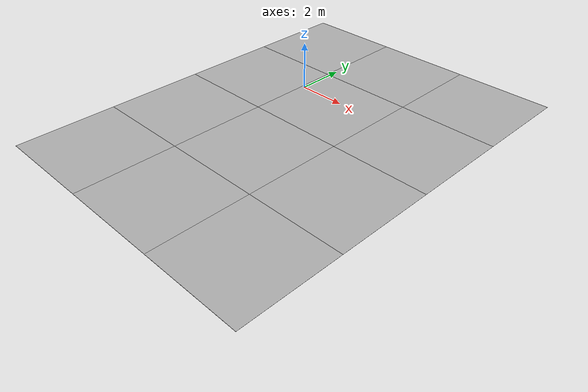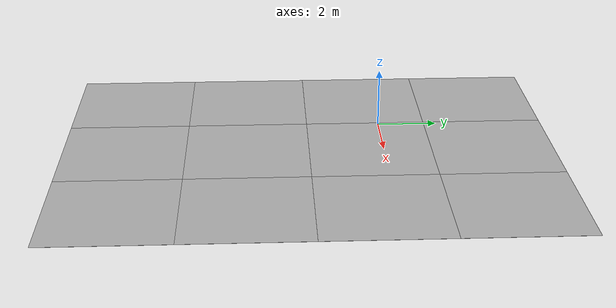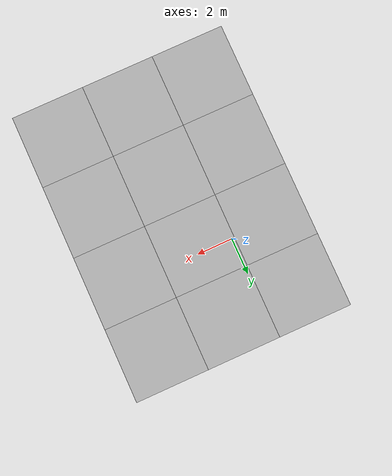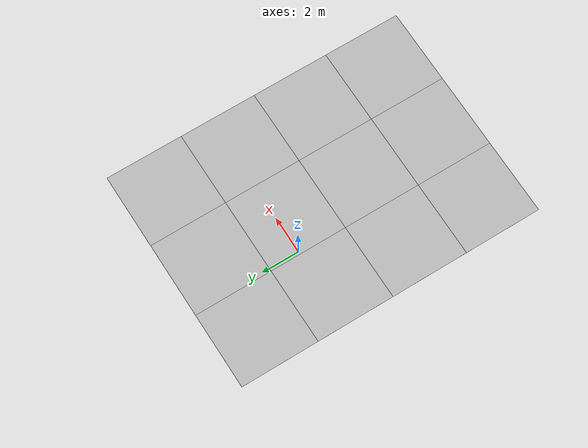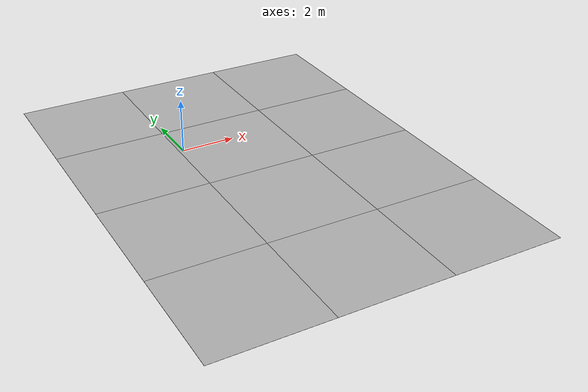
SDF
<sdf version='1.6'><world name='default'>
    <light name='sun_light' type='directional'>
      <pose frame=''>0 0 10 0 -0 0</pose>
      <diffuse>0.5 0.5 0.5 1</diffuse>
      <specular>0.1 0.1 0.1 1</specular>
      <direction>0.1 0.1 -0.9</direction>
      <attenuation>
        <range>20</range>
        <constant>0.5</constant>
        <linear>0.01</linear>
        <quadratic>0.001</quadratic>
      </attenuation>
      <cast_shadows>1</cast_shadows>
    </light>

    <model name='Tile/0-0'>
      <static>1</static>
      <link name='link'>
        <collision name='collision'>
          <geometry>
            <plane>
              <normal>0 0 1</normal>
              <size>4.096 4.096</size>
            </plane>
          </geometry>
          <surface>
            <friction>
              <ode>
                <mu>100</mu>
                <mu2>50</mu2>
              </ode>
              <torsional>
                <ode/>
              </torsional>
            </friction>
            <contact>
              <ode/>
            </contact>
            <bounce/>
          </surface>
          <max_contacts>10</max_contacts>
        </collision>
        <visual name='visual'>
          <cast_shadows>0</cast_shadows>
          <geometry>
            <plane>
              <normal>0 0 1</normal>
              <size>4.096 4.096</size>
            </plane>
          </geometry>
          <material>
            <script>
              <uri>file://materials/scripts</uri>
              <uri>file://materials/textures</uri>
              <name>Tile/b18befc734d38b8a63e7b01fea76f087b520a72ae71c5904a03c8d2267997cf1</name>
            </script>
          </material>
        </visual>
        <self_collide>0</self_collide>
        <enable_wind>0</enable_wind>
        <kinematic>0</kinematic>
      </link>
      <pose frame=''>-2.1885085330315093 -8.650071211363734 0 0 -0 0</pose>
    </model>

    <model name='Tile/0-1'>
      <static>1</static>
      <link name='link'>
        <collision name='collision'>
          <geometry>
            <plane>
              <normal>0 0 1</normal>
              <size>4.096 4.096</size>
            </plane>
          </geometry>
          <surface>
            <friction>
              <ode>
                <mu>100</mu>
                <mu2>50</mu2>
              </ode>
              <torsional>
                <ode/>
              </torsional>
            </friction>
            <contact>
              <ode/>
            </contact>
            <bounce/>
          </surface>
          <max_contacts>10</max_contacts>
        </collision>
        <visual name='visual'>
          <cast_shadows>0</cast_shadows>
          <geometry>
            <plane>
              <normal>0 0 1</normal>
              <size>4.096 4.096</size>
            </plane>
          </geometry>
          <material>
            <script>
              <uri>file://materials/scripts</uri>
              <uri>file://materials/textures</uri>
              <name>Tile/5eab350b8220ac9944dbdfa4ac3288c7c17e24c3bf5df0dfcf6173d64dae00a1</name>
            </script>
          </material>
        </visual>
        <self_collide>0</self_collide>
        <enable_wind>0</enable_wind>
        <kinematic>0</kinematic>
      </link>
      <pose frame=''>-2.1885085330315093 -4.554071211363734 0 0 -0 0</pose>
    </model>

    <model name='Tile/0-2'>
      <static>1</static>
      <link name='link'>
        <collision name='collision'>
          <geometry>
            <plane>
              <normal>0 0 1</normal>
              <size>4.096 4.096</size>
            </plane>
          </geometry>
          <surface>
            <friction>
              <ode>
                <mu>100</mu>
                <mu2>50</mu2>
              </ode>
              <torsional>
                <ode/>
              </torsional>
            </friction>
            <contact>
              <ode/>
            </contact>
            <bounce/>
          </surface>
          <max_contacts>10</max_contacts>
        </collision>
        <visual name='visual'>
          <cast_shadows>0</cast_shadows>
          <geometry>
            <plane>
              <normal>0 0 1</normal>
              <size>4.096 4.096</size>
            </plane>
          </geometry>
          <material>
            <script>
              <uri>file://materials/scripts</uri>
              <uri>file://materials/textures</uri>
              <name>Tile/5eab350b8220ac9944dbdfa4ac3288c7c17e24c3bf5df0dfcf6173d64dae00a1</name>
            </script>
          </material>
        </visual>
        <self_collide>0</self_collide>
        <enable_wind>0</enable_wind>
        <kinematic>0</kinematic>
      </link>
      <pose frame=''>-2.1885085330315093 -0.45807121136373397 0 0 -0 0</pose>
    </model>

    <model name='Tile/0-3'>
      <static>1</static>
      <link name='link'>
        <collision name='collision'>
          <geometry>
            <plane>
              <normal>0 0 1</normal>
              <size>4.096 4.096</size>
            </plane>
          </geometry>
          <surface>
            <friction>
              <ode>
                <mu>100</mu>
                <mu2>50</mu2>
              </ode>
              <torsional>
                <ode/>
              </torsional>
            </friction>
            <contact>
              <ode/>
            </contact>
            <bounce/>
          </surface>
          <max_contacts>10</max_contacts>
        </collision>
        <visual name='visual'>
          <cast_shadows>0</cast_shadows>
          <geometry>
            <plane>
              <normal>0 0 1</normal>
              <size>4.096 4.096</size>
            </plane>
          </geometry>
          <material>
            <script>
              <uri>file://materials/scripts</uri>
              <uri>file://materials/textures</uri>
              <name>Tile/5eab350b8220ac9944dbdfa4ac3288c7c17e24c3bf5df0dfcf6173d64dae00a1</name>
            </script>
          </material>
        </visual>
        <self_collide>0</self_collide>
        <enable_wind>0</enable_wind>
        <kinematic>0</kinematic>
      </link>
      <pose frame=''>-2.1885085330315093 3.637928788636266 0 0 -0 0</pose>
    </model>

    <model name='Tile/1-0'>
      <static>1</static>
      <link name='link'>
        <collision name='collision'>
          <geometry>
            <plane>
              <normal>0 0 1</normal>
              <size>4.096 4.096</size>
            </plane>
          </geometry>
          <surface>
            <friction>
              <ode>
                <mu>100</mu>
                <mu2>50</mu2>
              </ode>
              <torsional>
                <ode/>
              </torsional>
            </friction>
            <contact>
              <ode/>
            </contact>
            <bounce/>
          </surface>
          <max_contacts>10</max_contacts>
        </collision>
        <visual name='visual'>
          <cast_shadows>0</cast_shadows>
          <geometry>
            <plane>
              <normal>0 0 1</normal>
              <size>4.096 4.096</size>
            </plane>
          </geometry>
          <material>
            <script>
              <uri>file://materials/scripts</uri>
              <uri>file://materials/textures</uri>
              <name>Tile/c889b431e8de37477164d762eb7849d8eaf3bcede13469b32e2f5db8dbad0971</name>
            </script>
          </material>
        </visual>
        <self_collide>0</self_collide>
        <enable_wind>0</enable_wind>
        <kinematic>0</kinematic>
      </link>
      <pose frame=''>1.9074914669684908 -8.650071211363734 0 0 -0 0</pose>
    </model>

    <model name='Tile/1-1'>
      <static>1</static>
      <link name='link'>
        <collision name='collision'>
          <geometry>
            <plane>
              <normal>0 0 1</normal>
              <size>4.096 4.096</size>
            </plane>
          </geometry>
          <surface>
            <friction>
              <ode>
                <mu>100</mu>
                <mu2>50</mu2>
              </ode>
              <torsional>
                <ode/>
              </torsional>
            </friction>
            <contact>
              <ode/>
            </contact>
            <bounce/>
          </surface>
          <max_contacts>10</max_contacts>
        </collision>
        <visual name='visual'>
          <cast_shadows>0</cast_shadows>
          <geometry>
            <plane>
              <normal>0 0 1</normal>
              <size>4.096 4.096</size>
            </plane>
          </geometry>
          <material>
            <script>
              <uri>file://materials/scripts</uri>
              <uri>file://materials/textures</uri>
              <name>Tile/8ccf845bcbc78dfbab8809cf28eda37bd0853e8efff31698b2c3ea2ce3ca0df1</name>
            </script>
          </material>
        </visual>
        <self_collide>0</self_collide>
        <enable_wind>0</enable_wind>
        <kinematic>0</kinematic>
      </link>
      <pose frame=''>1.9074914669684908 -4.554071211363734 0 0 -0 0</pose>
    </model>

    <model name='Tile/1-2'>
      <static>1</static>
      <link name='link'>
        <collision name='collision'>
          <geometry>
            <plane>
              <normal>0 0 1</normal>
              <size>4.096 4.096</size>
            </plane>
          </geometry>
          <surface>
            <friction>
              <ode>
                <mu>100</mu>
                <mu2>50</mu2>
              </ode>
              <torsional>
                <ode/>
              </torsional>
            </friction>
            <contact>
              <ode/>
            </contact>
            <bounce/>
          </surface>
          <max_contacts>10</max_contacts>
        </collision>
        <visual name='visual'>
          <cast_shadows>0</cast_shadows>
          <geometry>
            <plane>
              <normal>0 0 1</normal>
              <size>4.096 4.096</size>
            </plane>
          </geometry>
          <material>
            <script>
              <uri>file://materials/scripts</uri>
              <uri>file://materials/textures</uri>
              <name>Tile/47ed2764d30c41650273050d3053e1669ec7b254b4cb70cbc40a5cf77295057b</name>
            </script>
          </material>
        </visual>
        <self_collide>0</self_collide>
        <enable_wind>0</enable_wind>
        <kinematic>0</kinematic>
      </link>
      <pose frame=''>1.9074914669684908 -0.45807121136373397 0 0 -0 0</pose>
    </model>

    <model name='Tile/1-3'>
      <static>1</static>
      <link name='link'>
        <collision name='collision'>
          <geometry>
            <plane>
              <normal>0 0 1</normal>
              <size>4.096 4.096</size>
            </plane>
          </geometry>
          <surface>
            <friction>
              <ode>
                <mu>100</mu>
                <mu2>50</mu2>
              </ode>
              <torsional>
                <ode/>
              </torsional>
            </friction>
            <contact>
              <ode/>
            </contact>
            <bounce/>
          </surface>
          <max_contacts>10</max_contacts>
        </collision>
        <visual name='visual'>
          <cast_shadows>0</cast_shadows>
          <geometry>
            <plane>
              <normal>0 0 1</normal>
              <size>4.096 4.096</size>
            </plane>
          </geometry>
          <material>
            <script>
              <uri>file://materials/scripts</uri>
              <uri>file://materials/textures</uri>
              <name>Tile/5eab350b8220ac9944dbdfa4ac3288c7c17e24c3bf5df0dfcf6173d64dae00a1</name>
            </script>
          </material>
        </visual>
        <self_collide>0</self_collide>
        <enable_wind>0</enable_wind>
        <kinematic>0</kinematic>
      </link>
      <pose frame=''>1.9074914669684908 3.637928788636266 0 0 -0 0</pose>
    </model>

    <model name='Tile/2-0'>
      <static>1</static>
      <link name='link'>
        <collision name='collision'>
          <geometry>
            <plane>
              <normal>0 0 1</normal>
              <size>4.096 4.096</size>
            </plane>
          </geometry>
          <surface>
            <friction>
              <ode>
                <mu>100</mu>
                <mu2>50</mu2>
              </ode>
              <torsional>
                <ode/>
              </torsional>
            </friction>
            <contact>
              <ode/>
            </contact>
            <bounce/>
          </surface>
          <max_contacts>10</max_contacts>
        </collision>
        <visual name='visual'>
          <cast_shadows>0</cast_shadows>
          <geometry>
            <plane>
              <normal>0 0 1</normal>
              <size>4.096 4.096</size>
            </plane>
          </geometry>
          <material>
            <script>
              <uri>file://materials/scripts</uri>
              <uri>file://materials/textures</uri>
              <name>Tile/5eab350b8220ac9944dbdfa4ac3288c7c17e24c3bf5df0dfcf6173d64dae00a1</name>
            </script>
          </material>
        </visual>
        <self_collide>0</self_collide>
        <enable_wind>0</enable_wind>
        <kinematic>0</kinematic>
      </link>
      <pose frame=''>6.003491466968491 -8.650071211363734 0 0 -0 0</pose>
    </model>

    <model name='Tile/2-1'>
      <static>1</static>
      <link name='link'>
        <collision name='collision'>
          <geometry>
            <plane>
              <normal>0 0 1</normal>
              <size>4.096 4.096</size>
            </plane>
          </geometry>
          <surface>
            <friction>
              <ode>
                <mu>100</mu>
                <mu2>50</mu2>
              </ode>
              <torsional>
                <ode/>
              </torsional>
            </friction>
            <contact>
              <ode/>
            </contact>
            <bounce/>
          </surface>
          <max_contacts>10</max_contacts>
        </collision>
        <visual name='visual'>
          <cast_shadows>0</cast_shadows>
          <geometry>
            <plane>
              <normal>0 0 1</normal>
              <size>4.096 4.096</size>
            </plane>
          </geometry>
          <material>
            <script>
              <uri>file://materials/scripts</uri>
              <uri>file://materials/textures</uri>
              <name>Tile/5eab350b8220ac9944dbdfa4ac3288c7c17e24c3bf5df0dfcf6173d64dae00a1</name>
            </script>
          </material>
        </visual>
        <self_collide>0</self_collide>
        <enable_wind>0</enable_wind>
        <kinematic>0</kinematic>
      </link>
      <pose frame=''>6.003491466968491 -4.554071211363734 0 0 -0 0</pose>
    </model>

    <model name='Tile/2-2'>
      <static>1</static>
      <link name='link'>
        <collision name='collision'>
          <geometry>
            <plane>
              <normal>0 0 1</normal>
              <size>4.096 4.096</size>
            </plane>
          </geometry>
          <surface>
            <friction>
              <ode>
                <mu>100</mu>
                <mu2>50</mu2>
              </ode>
              <torsional>
                <ode/>
              </torsional>
            </friction>
            <contact>
              <ode/>
            </contact>
            <bounce/>
          </surface>
          <max_contacts>10</max_contacts>
        </collision>
        <visual name='visual'>
          <cast_shadows>0</cast_shadows>
          <geometry>
            <plane>
              <normal>0 0 1</normal>
              <size>4.096 4.096</size>
            </plane>
          </geometry>
          <material>
            <script>
              <uri>file://materials/scripts</uri>
              <uri>file://materials/textures</uri>
              <name>Tile/5eab350b8220ac9944dbdfa4ac3288c7c17e24c3bf5df0dfcf6173d64dae00a1</name>
            </script>
          </material>
        </visual>
        <self_collide>0</self_collide>
        <enable_wind>0</enable_wind>
        <kinematic>0</kinematic>
      </link>
      <pose frame=''>6.003491466968491 -0.45807121136373397 0 0 -0 0</pose>
    </model>

    <model name='Tile/2-3'>
      <static>1</static>
      <link name='link'>
        <collision name='collision'>
          <geometry>
            <plane>
              <normal>0 0 1</normal>
              <size>4.096 4.096</size>
            </plane>
          </geometry>
          <surface>
            <friction>
              <ode>
                <mu>100</mu>
                <mu2>50</mu2>
              </ode>
              <torsional>
                <ode/>
              </torsional>
            </friction>
            <contact>
              <ode/>
            </contact>
            <bounce/>
          </surface>
          <max_contacts>10</max_contacts>
        </collision>
        <visual name='visual'>
          <cast_shadows>0</cast_shadows>
          <geometry>
            <plane>
              <normal>0 0 1</normal>
              <size>4.096 4.096</size>
            </plane>
          </geometry>
          <material>
            <script>
              <uri>file://materials/scripts</uri>
              <uri>file://materials/textures</uri>
              <name>Tile/5eab350b8220ac9944dbdfa4ac3288c7c17e24c3bf5df0dfcf6173d64dae00a1</name>
            </script>
          </material>
        </visual>
        <self_collide>0</self_collide>
        <enable_wind>0</enable_wind>
        <kinematic>0</kinematic>
      </link>
      <pose frame=''>6.003491466968491 3.637928788636266 0 0 -0 0</pose>
    </model>
    </world></sdf>
